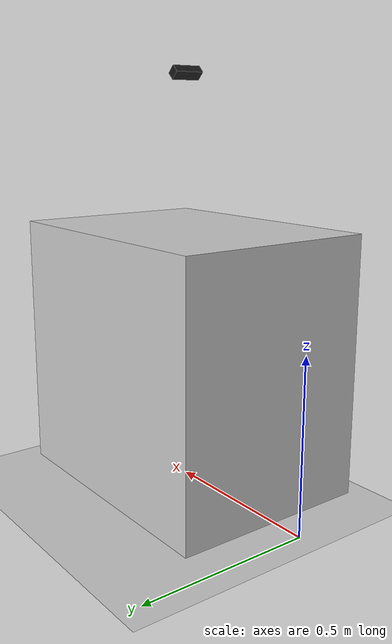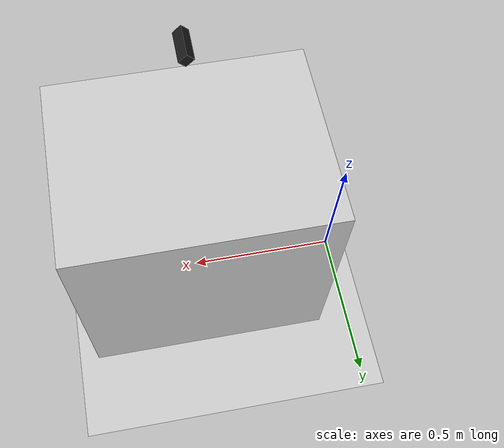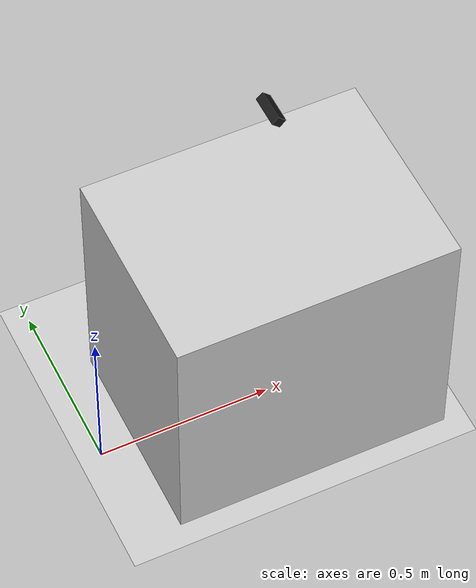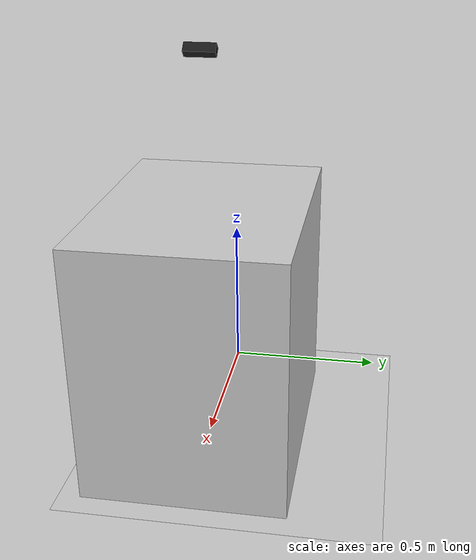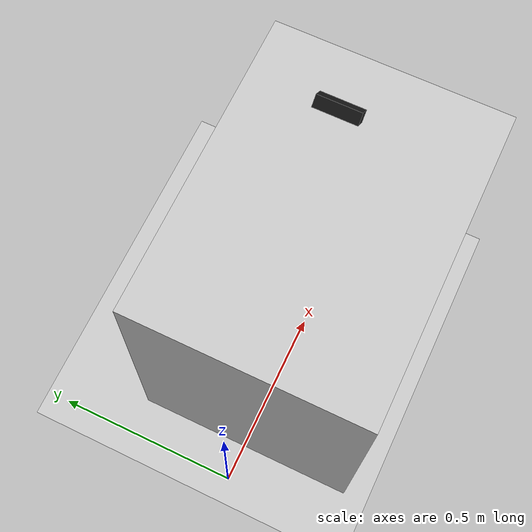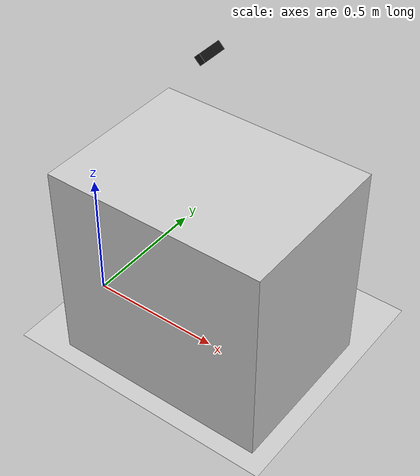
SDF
<?xml version="1.0"?>
<sdf version="1.6">
<world name="peg_transfer_world">

  <physics type="ode">
    <real_time_update_rate>1000</real_time_update_rate>
    <max_step_size>0.001</max_step_size>
    <real_time_factor>1</real_time_factor>
  </physics>

  <light name="sun" type="directional">
    <cast_shadows>true</cast_shadows>
    <pose>0 0 10 0 0 0</pose>
    <diffuse>0.9 0.9 0.9 1</diffuse>
    <specular>0.1 0.1 0.1 1</specular>
    <direction>-0.5 0.5 -1</direction>
  </light>

  <light name="overhead" type="point">
    <pose>0.5 0 1.5 0 0 0</pose>
    <diffuse>0.7 0.7 0.7 1</diffuse>
    <specular>0.0 0.0 0.0 1</specular>
    <attenuation>
      <range>3</range>
      <constant>0.5</constant>
      <linear>0.01</linear>
      <quadratic>0.001</quadratic>
    </attenuation>
  </light>

  <include>
    <uri>model://ground_plane</uri>
  </include>

  <model name="operating_table">
    <static>true</static>
    <pose>0.5 0 0.385 0 0 0</pose>
    <link name="table_link">
      <visual name="table_visual">
        <geometry>
          <box><size>0.8 0.6 0.77</size></box>
        </geometry>
        <material>
          <ambient>0.8 0.8 0.8 1</ambient>
          <diffuse>0.8 0.8 0.8 1</diffuse>
        </material>
      </visual>
      <collision name="table_collision">
        <geometry>
          <box><size>0.8 0.6 0.77</size></box>
        </geometry>
      </collision>
    </link>
  </model>

  <model name="depth_camera">
    <static>true</static>
    <pose>0.5 0 1.2 0 0.785 0</pose>
    <link name="camera_link">
      <visual name="camera_visual">
        <geometry>
          <box><size>0.03 0.09 0.025</size></box>
        </geometry>
        <material>
          <ambient>0.1 0.1 0.1 1</ambient>
          <diffuse>0.1 0.1 0.1 1</diffuse>
        </material>
      </visual>
      <sensor name="depth_camera_sensor" type="depth">
        <update_rate>30</update_rate>
        <camera>
          <horizontal_fov>1.047</horizontal_fov>
          <image>
            <width>640</width>
            <height>480</height>
            <format>R8G8B8</format>
          </image>
          <clip>
            <near>0.05</near>
            <far>1.5</far>
          </clip>
        </camera>
        <plugin name="depth_camera_plugin" filename="libgazebo_ros_camera.so">
          <ros>
            <namespace>/camera</namespace>
          </ros>
          <camera_name>color</camera_name>
          <frame_name>camera_depth_optical_frame</frame_name>
          <hack_baseline>0.07</hack_baseline>
        </plugin>
      </sensor>
    </link>
  </model>

  <plugin name="gazebo_ros_state" filename="libgazebo_ros_state.so">
    <ros>
      <namespace>/gazebo</namespace>
    </ros>
    <update_rate>1.0</update_rate>
  </plugin>

  <plugin name="gazebo_ros_factory" filename="libgazebo_ros_factory.so"/>

</world>
</sdf>
